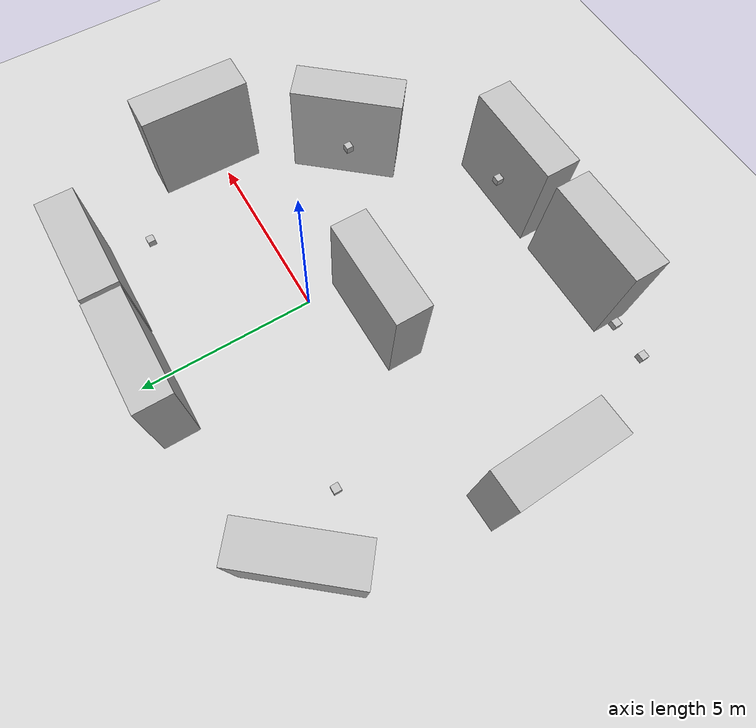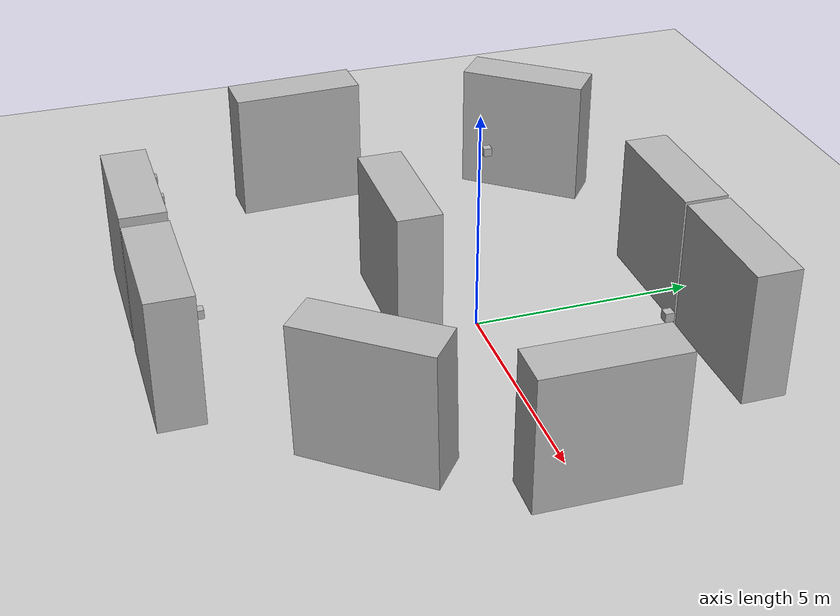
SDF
<sdf version="1.7">
 <world name="default">
  <light name="sun" type="directional">
   <pose>0 0 10 0 -0 0</pose>
   <diffuse>0.8 0.8 0.8 1</diffuse>
   <specular>0.2 0.2 0.2 1</specular>
   <attenuation>
    <range>1000</range>
    <constant>0.9</constant>
    <linear>0.01</linear>
    <quadratic>0.001</quadratic>
   </attenuation>
   <direction>-0.5 0.1 -0.9</direction>
   <spot><inner_angle>0</inner_angle><outer_angle>0</outer_angle><falloff>0</falloff></spot>
  </light>
  <model name="ground_plane">
   <static>1</static>
   <link name="link">
    <collision name="collision">
     <geometry><plane><normal>0 0 1</normal><size>100 100</size></plane></geometry>
     <surface>
      <contact><collide_bitmask>65535</collide_bitmask></contact>
      <friction><ode><mu>100</mu><mu2>50</mu2></ode></friction>
     </surface>
    </collision>
    <visual name="visual">
     <cast_shadows>0</cast_shadows>
     <geometry><plane><normal>0 0 1</normal><size>100 100</size></plane></geometry>
     <material>
      <script><uri>file://media/materials/scripts/gazebo.material</uri><name>Gazebo/Grey</name></script>
     </material>
    </visual>
   </link>
  </model>
  <gravity>0 0 -9.8</gravity>
  <magnetic_field>6e-06 2.3e-05 -4.2e-05</magnetic_field>
  <atmosphere type="adiabatic"/>
  <physics type="ode">
   <max_step_size>0.001</max_step_size>
   <real_time_factor>1</real_time_factor>
   <real_time_update_rate>1000</real_time_update_rate>
  </physics>
  <scene><ambient>0.4 0.4 0.4 1</ambient><background>0.7 0.7 0.7 1</background><shadows>1</shadows></scene>
  <spherical_coordinates>
   <surface_model>EARTH_WGS84</surface_model>
   <latitude_deg>0</latitude_deg>
   <longitude_deg>0</longitude_deg>
   <elevation>0</elevation>
   <heading_deg>0</heading_deg>
  </spherical_coordinates>
  <model name="brick_box_3x1x3">
   <static>1</static>
   <link name="chassis">
    <pose>0 0 1.5 0 -0 0</pose>
    <collision name="collision"><geometry><box><size>3 1 3</size></box></geometry></collision>
    <visual name="visual">
     <geometry><mesh><uri>model://brick_box_3x1x3/meshes/simple_box.dae</uri><scale>3 1 3</scale></mesh></geometry>
     <material>
      <script>
       <uri>model://brick_box_3x1x3/materials/scripts</uri>
       <uri>model://brick_box_3x1x3/materials/textures</uri>
       <name>BrickBox/Diffuse</name>
      </script>
     </material>
    </visual>
   </link>
   <pose>-0.239917 4.61097 0 0 -0 0</pose>
  </model>
  <model name="brick_box_3x1x3_0">
   <static>1</static>
   <link name="chassis">
    <pose>0 0 1.5 0 -0 0</pose>
    <collision name="collision"><geometry><box><size>3 1 3</size></box></geometry></collision>
    <visual name="visual">
     <geometry><mesh><uri>model://brick_box_3x1x3/meshes/simple_box.dae</uri><scale>3 1 3</scale></mesh></geometry>
     <material>
      <script>
       <uri>model://brick_box_3x1x3/materials/scripts</uri>
       <uri>model://brick_box_3x1x3/materials/textures</uri>
       <name>BrickBox/Diffuse</name>
      </script>
     </material>
    </visual>
   </link>
   <pose>0.224327 -6.74618 0 0 -0 0</pose>
  </model>
  <model name="brick_box_3x1x3_1">
   <static>1</static>
   <link name="chassis">
    <pose>0 0 1.5 0 -0 0</pose>
    <collision name="collision"><geometry><box><size>3 1 3</size></box></geometry></collision>
    <visual name="visual">
     <geometry><mesh><uri>model://brick_box_3x1x3/meshes/simple_box.dae</uri><scale>3 1 3</scale></mesh></geometry>
     <material>
      <script>
       <uri>model://brick_box_3x1x3/materials/scripts</uri>
       <uri>model://brick_box_3x1x3/materials/textures</uri>
       <name>BrickBox/Diffuse</name>
      </script>
     </material>
    </visual>
   </link>
   <pose>-6.94344 -2.31226 0 0 0 -1.53225</pose>
  </model>
  <model name="brick_box_3x1x3_2">
   <static>1</static>
   <link name="chassis">
    <pose>0 0 1.5 0 -0 0</pose>
    <collision name="collision"><geometry><box><size>3 1 3</size></box></geometry></collision>
    <visual name="visual">
     <geometry><mesh><uri>model://brick_box_3x1x3/meshes/simple_box.dae</uri><scale>3 1 3</scale></mesh></geometry>
     <material>
      <script>
       <uri>model://brick_box_3x1x3/materials/scripts</uri>
       <uri>model://brick_box_3x1x3/materials/textures</uri>
       <name>BrickBox/Diffuse</name>
      </script>
     </material>
    </visual>
   </link>
   <pose>5.73194 0.366715 0 0 0 -1.58767</pose>
  </model>
  <model name="brick_box_3x1x3_3">
   <static>1</static>
   <link name="chassis">
    <pose>0 0 1.5 0 -0 0</pose>
    <collision name="collision"><geometry><box><size>3 1 3</size></box></geometry></collision>
    <visual name="visual">
     <geometry><mesh><uri>model://brick_box_3x1x3/meshes/simple_box.dae</uri><scale>3 1 3</scale></mesh></geometry>
     <material>
      <script>
       <uri>model://brick_box_3x1x3/materials/scripts</uri>
       <uri>model://brick_box_3x1x3/materials/textures</uri>
       <name>BrickBox/Diffuse</name>
      </script>
     </material>
    </visual>
   </link>
   <pose>-3.14911 -6.73395 0 0 -0 0</pose>
  </model>
  <model name="brick_box_3x1x3_4">
   <static>1</static>
   <link name="chassis">
    <pose>0 0 1.5 0 -0 0</pose>
    <collision name="collision"><geometry><box><size>3 1 3</size></box></geometry></collision>
    <visual name="visual">
     <geometry><mesh><uri>model://brick_box_3x1x3/meshes/simple_box.dae</uri><scale>3 1 3</scale></mesh></geometry>
     <material>
      <script>
       <uri>model://brick_box_3x1x3/materials/scripts</uri>
       <uri>model://brick_box_3x1x3/materials/textures</uri>
       <name>BrickBox/Diffuse</name>
      </script>
     </material>
    </visual>
   </link>
   <pose>3.72302 -3.3635 0 0.013623 -0.016629 0.884407</pose>
  </model>
  <model name="brick_box_3x1x3_5">
   <static>1</static>
   <link name="chassis">
    <pose>0 0 1.5 0 -0 0</pose>
    <collision name="collision"><geometry><box><size>3 1 3</size></box></geometry></collision>
    <visual name="visual">
     <geometry><mesh><uri>model://brick_box_3x1x3/meshes/simple_box.dae</uri><scale>3 1 3</scale></mesh></geometry>
     <material>
      <script>
       <uri>model://brick_box_3x1x3/materials/scripts</uri>
       <uri>model://brick_box_3x1x3/materials/textures</uri>
       <name>BrickBox/Diffuse</name>
      </script>
     </material>
    </visual>
   </link>
   <pose>-5.91924 3.3773 0 0 -0 0.894635</pose>
  </model>
  <model name="brick_box_3x1x3_6">
   <static>1</static>
   <link name="chassis">
    <pose>0 0 1.5 0 -0 0</pose>
    <collision name="collision"><geometry><box><size>3 1 3</size></box></geometry></collision>
    <visual name="visual">
     <geometry><mesh><uri>model://brick_box_3x1x3/meshes/simple_box.dae</uri><scale>3 1 3</scale></mesh></geometry>
     <material>
      <script>
       <uri>model://brick_box_3x1x3/materials/scripts</uri>
       <uri>model://brick_box_3x1x3/materials/textures</uri>
       <name>BrickBox/Diffuse</name>
      </script>
     </material>
    </visual>
   </link>
   <pose>2.87158 4.5953 0 0 -0 0</pose>
  </model>
  <model name="brick_box_3x1x3_7">
   <static>1</static>
   <link name="chassis">
    <pose>0 0 1.5 0 -0 0</pose>
    <collision name="collision"><geometry><box><size>3 1 3</size></box></geometry></collision>
    <visual name="visual">
     <geometry><mesh><uri>model://brick_box_3x1x3/meshes/simple_box.dae</uri><scale>3 1 3</scale></mesh></geometry>
     <material>
      <script>
       <uri>model://brick_box_3x1x3/materials/scripts</uri>
       <uri>model://brick_box_3x1x3/materials/textures</uri>
       <name>BrickBox/Diffuse</name>
      </script>
     </material>
    </visual>
   </link>
   <pose>-1.30292 -1.34969 0 0 -0 0</pose>
  </model>
  <model name="uwb_anchor0">
   <pose>3.0 3.0 1.5 0 0 0</pose>
   <static>1</static>
   <link name="link">
    <visual name="visual"><geometry><box><size>0.2 0.2 0.2</size></box></geometry></visual>
   </link>
  </model>
  <model name="uwb_anchor1">
   <pose>3.0 -3.0 1.5 0 0 0</pose>
   <static>1</static>
   <link name="link">
    <visual name="visual"><geometry><box><size>0.2 0.2 0.2</size></box></geometry></visual>
   </link>
  </model>
  <model name="uwb_anchor2">
   <pose>-5 2 1.5 0 0 0</pose>
   <static>1</static>
   <link name="link">
    <visual name="visual"><geometry><box><size>0.2 0.2 0.2</size></box></geometry></visual>
   </link>
  </model>
  <model name="uwb_anchor3">
   <pose>-5 -6 1.5 0 0 0</pose>
   <static>1</static>
   <link name="link">
    <visual name="visual"><geometry><box><size>0.2 0.2 0.2</size></box></geometry></visual>
   </link>
  </model>
  <model name="uwb_anchor4">
   <pose>0 -6 1.5 0 0 0</pose>
   <static>1</static>
   <link name="link">
    <visual name="visual"><geometry><box><size>0.2 0.2 0.2</size></box></geometry></visual>
   </link>
  </model>
  <model name="uwb_anchor5">
   <pose>-6 -6 1.5 0 0 0</pose>
   <static>1</static>
   <link name="link">
    <visual name="visual"><geometry><box><size>0.2 0.2 0.2</size></box></geometry></visual>
   </link>
  </model>
 </world>
</sdf>
